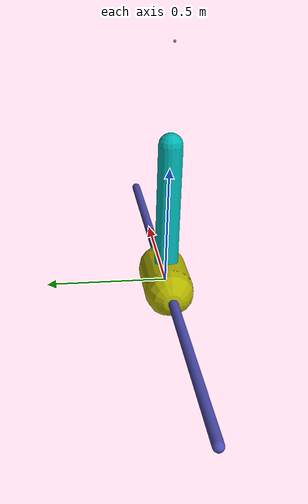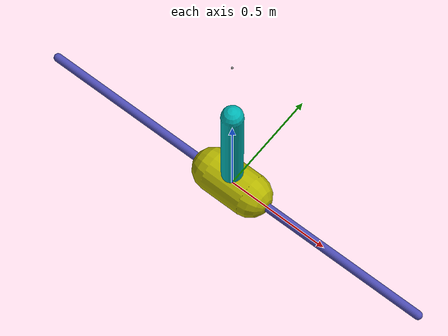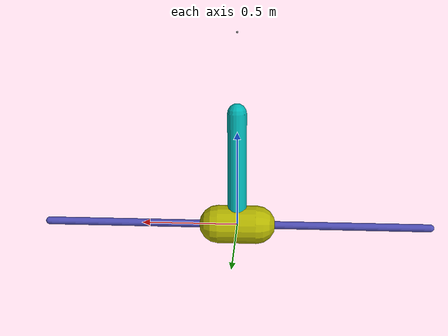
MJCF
<mujoco model="Cart-Pole Swing-Up">
  <include file="inverted_pendulum.xml" />

  <size memory="4K"/>

  <custom>
    <!-- agent -->
    <numeric name="agent_planner" data="1" />
    <numeric name="agent_horizon" data="1.0" />
    <numeric name="agent_timestep" data="0.01" />
    <numeric name="sampling_sample_width" data="0.01" />
    <numeric name="sampling_control_width" data="0.015" />
    <numeric name="sampling_spline_points" data="10" />
    <numeric name="sampling_exploration" data="0.5" />
    <numeric name="gradient_spline_points" data="10" />
    <numeric name="residual_Goal" data="0.0 -1.5 1.5" />

    <!-- estimator -->
    <numeric name="estimator" data="0" />
    <numeric name="estimator_sensor_start" data="4" />
    <numeric name="estimator_number_sensor" data="2" />
    <numeric name="estimator_timestep" data="0.005" />
    <numeric name="batch_configuration_length" data="3" />
    <numeric name="batch_scale_prior" data="1.0e-3" />
  </custom>

  <sensor>
    <!-- cost -->
    <user name="Vertical" dim="1" user="0 100.0 0 1000.0 1"/>
    <user name="Centered" dim="1" user="6 1.0 0 100.0 0.1"/>
    <user name="Velocity" dim="1" user="0 0.1 0.0 1.0"/>

    <!-- estimator -->
    <jointpos name="slider_pos" joint="slider"/>
    <jointpos name="hinge_pos" joint="hinge"/>

    <!-- trace -->

    <!-- residual -->
  </sensor>

  <keyframe>
    <key name="home" qpos="1 0" />
  </keyframe>
</mujoco>

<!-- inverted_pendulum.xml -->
<mujoco model="inverted pendulum">
	<compiler inertiafromgeom="true"/>
	<default>
		<joint armature="0" damping="1" limited="true"/>
		<geom contype="0" friction="1 0.1 0.1" rgba="0.7 0.7 0 1"/>
		<tendon/>
		<motor ctrlrange="-3 3"/>
	</default>
	<option gravity="0 0 -9.81" integrator="RK4" timestep="0.02"/>
	<size nstack="3000"/>
	<worldbody>
		<!--geom name="ground" type="plane" pos="0 0 0" /-->
		<geom name="rail" pos="0 0 0" quat="0.707 0 0.707 0" rgba="0.3 0.3 0.7 1" size="0.02 1" type="capsule"/>
		<body name="cart" pos="0 0 0">
			<joint axis="1 0 0" limited="true" name="slider" pos="0 0 0" range="-1 1" type="slide" solreflimit=".08 1" damping="1.0e-4"/>
			<geom name="cart" pos="0 0 0" quat="0.707 0 0.707 0" size="0.1 0.1" type="capsule"/>
			<body name="pole" pos="0 0 0">
				<joint axis="0 1 0" name="hinge" pos="0 0 0" range="-20 20" type="hinge" damping="1.0e-4"/>
				<geom fromto="0 0 0 0.001 0 0.6" name="cpole" rgba="0 0.7 0.7 1" size="0.049 0.3" type="capsule"/>
			+       <site name="tip" pos="0 0 1"/>
			</body>
		</body>
	</worldbody>
	<actuator>
		<motor ctrllimited="true" ctrlrange="-3 3" gear="100" joint="slider" name="slide"/>
	</actuator>
</mujoco>
